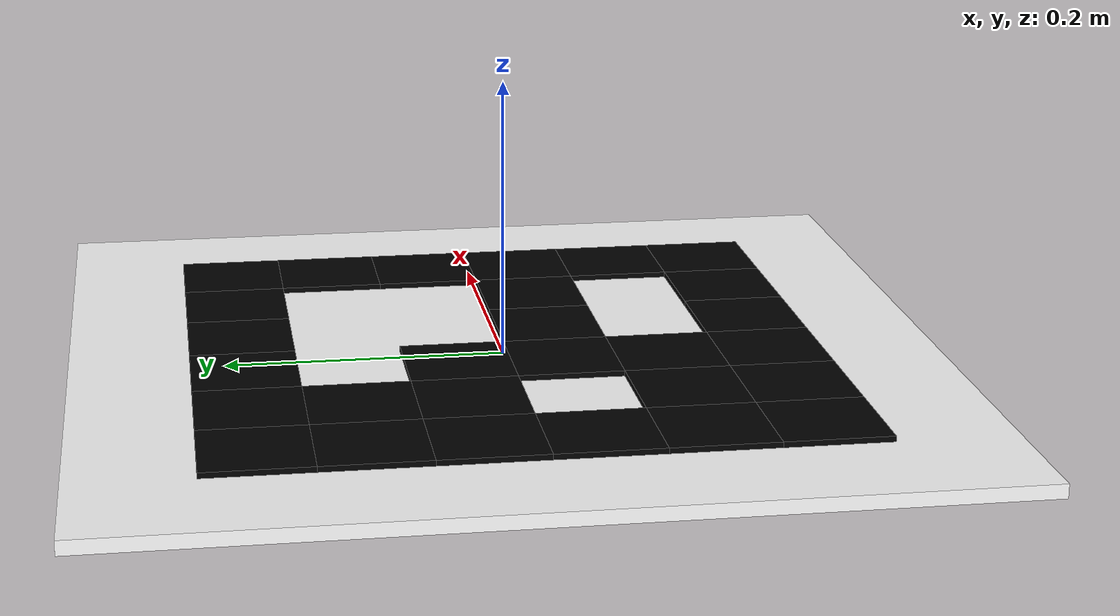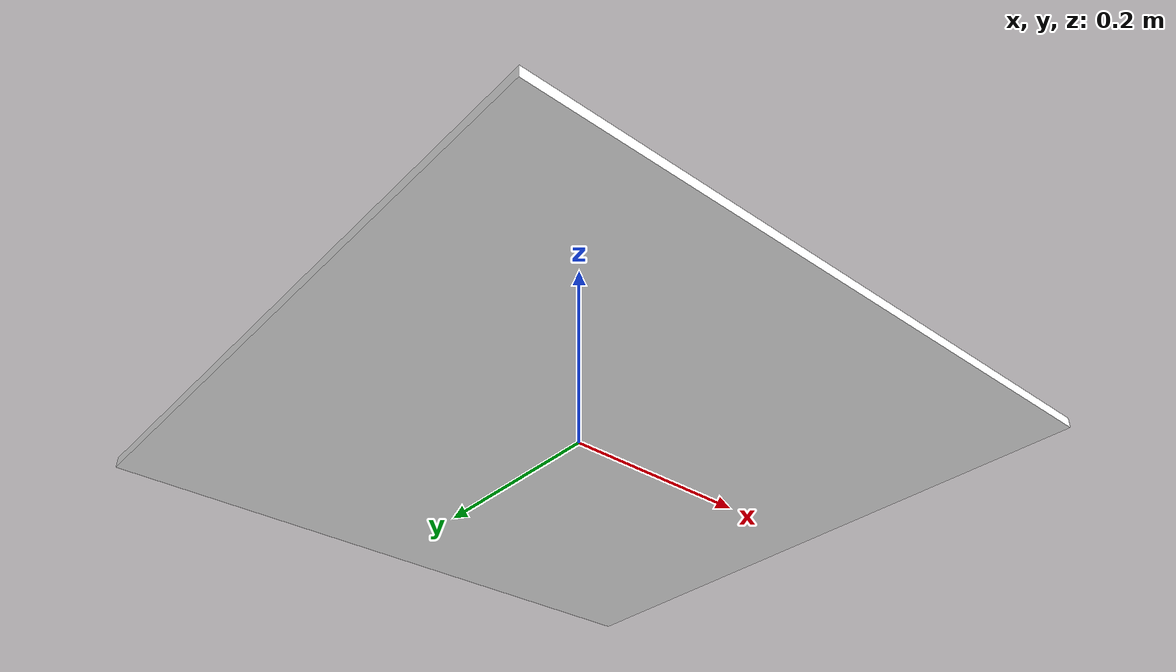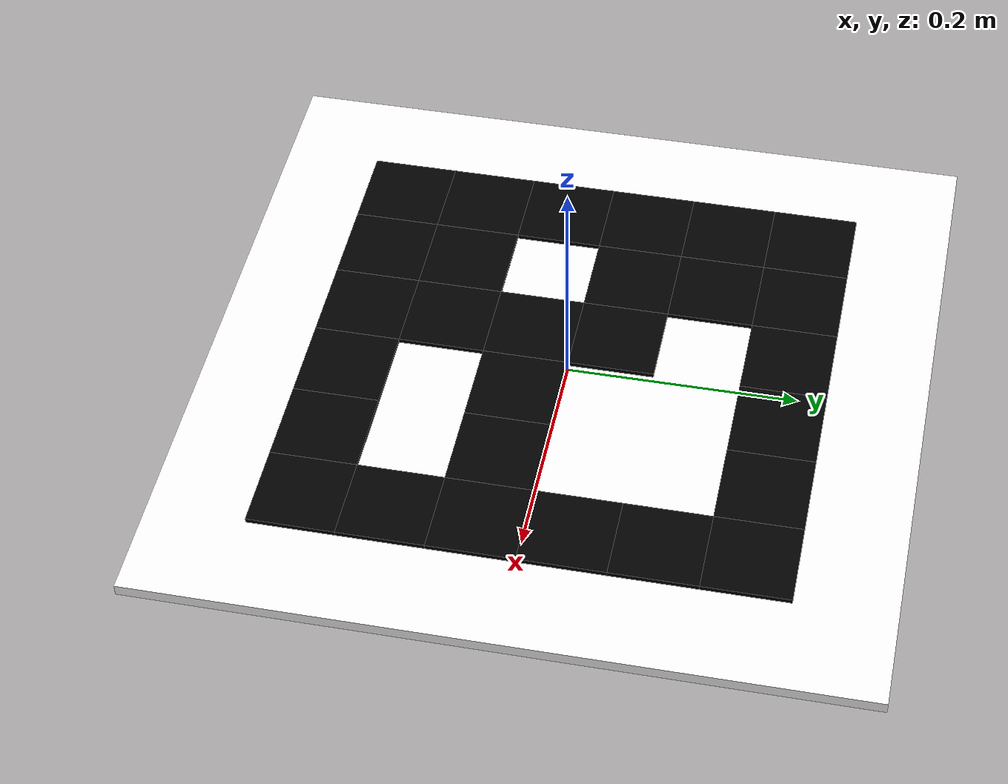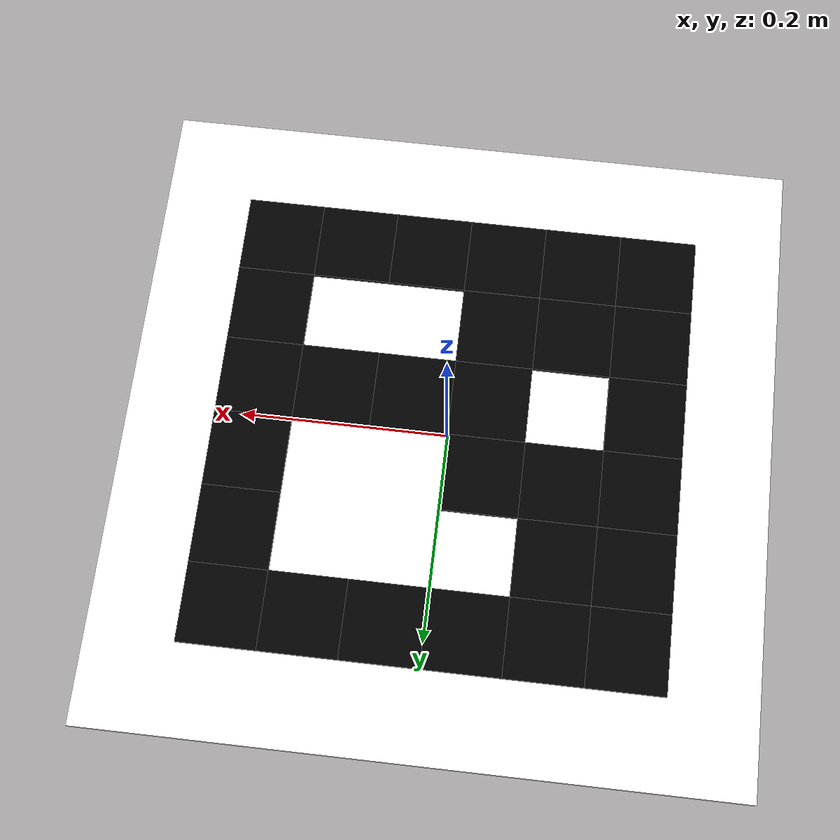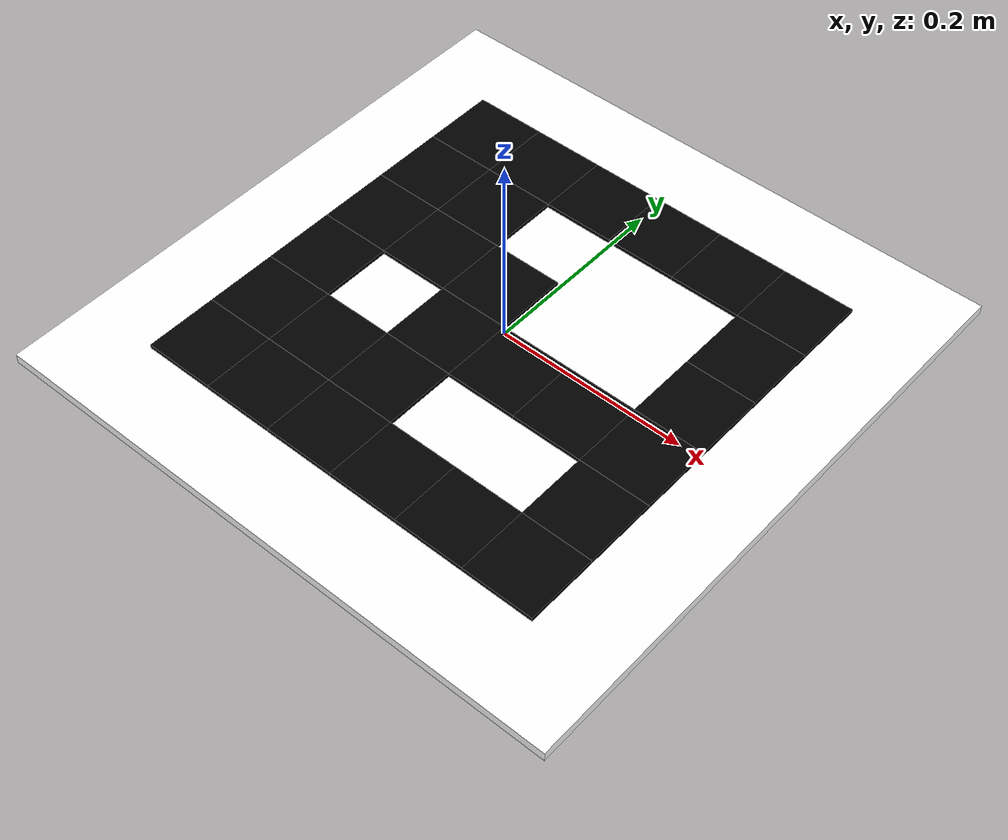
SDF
<?xml version="1.0"?>
<sdf version="1.9">
  <model name="aruco_marker">
    <static>true</static>
    <link name="board">
      <collision name="board_collision">
        <geometry><box><size>0.620 0.620 0.01</size></box></geometry>
      </collision>
      <visual name="white_board">
        <geometry><box><size>0.620 0.620 0.01</size></box></geometry>
        <material>
          <ambient>1 1 1 1</ambient>
          <diffuse>1 1 1 1</diffuse>
          <specular>0 0 0 1</specular>
        </material>
      </visual>
      <visual name="cell_00">
        <pose>0.187500 0.187500 0.007 0 0 0</pose>
        <geometry><box><size>0.075000 0.075000 0.004</size></box></geometry>
        <material>
          <ambient>0.005 0.005 0.005 1</ambient>
          <diffuse>0.005 0.005 0.005 1</diffuse>
          <specular>0 0 0 1</specular>
        </material>
      </visual>
      <visual name="cell_01">
        <pose>0.187500 0.112500 0.007 0 0 0</pose>
        <geometry><box><size>0.075000 0.075000 0.004</size></box></geometry>
        <material>
          <ambient>0.005 0.005 0.005 1</ambient>
          <diffuse>0.005 0.005 0.005 1</diffuse>
          <specular>0 0 0 1</specular>
        </material>
      </visual>
      <visual name="cell_02">
        <pose>0.187500 0.037500 0.007 0 0 0</pose>
        <geometry><box><size>0.075000 0.075000 0.004</size></box></geometry>
        <material>
          <ambient>0.005 0.005 0.005 1</ambient>
          <diffuse>0.005 0.005 0.005 1</diffuse>
          <specular>0 0 0 1</specular>
        </material>
      </visual>
      <visual name="cell_03">
        <pose>0.187500 -0.037500 0.007 0 0 0</pose>
        <geometry><box><size>0.075000 0.075000 0.004</size></box></geometry>
        <material>
          <ambient>0.005 0.005 0.005 1</ambient>
          <diffuse>0.005 0.005 0.005 1</diffuse>
          <specular>0 0 0 1</specular>
        </material>
      </visual>
      <visual name="cell_04">
        <pose>0.187500 -0.112500 0.007 0 0 0</pose>
        <geometry><box><size>0.075000 0.075000 0.004</size></box></geometry>
        <material>
          <ambient>0.005 0.005 0.005 1</ambient>
          <diffuse>0.005 0.005 0.005 1</diffuse>
          <specular>0 0 0 1</specular>
        </material>
      </visual>
      <visual name="cell_05">
        <pose>0.187500 -0.187500 0.007 0 0 0</pose>
        <geometry><box><size>0.075000 0.075000 0.004</size></box></geometry>
        <material>
          <ambient>0.005 0.005 0.005 1</ambient>
          <diffuse>0.005 0.005 0.005 1</diffuse>
          <specular>0 0 0 1</specular>
        </material>
      </visual>
      <visual name="cell_06">
        <pose>0.112500 0.187500 0.007 0 0 0</pose>
        <geometry><box><size>0.075000 0.075000 0.004</size></box></geometry>
        <material>
          <ambient>0.005 0.005 0.005 1</ambient>
          <diffuse>0.005 0.005 0.005 1</diffuse>
          <specular>0 0 0 1</specular>
        </material>
      </visual>
      <visual name="cell_07">
        <pose>0.112500 -0.037500 0.007 0 0 0</pose>
        <geometry><box><size>0.075000 0.075000 0.004</size></box></geometry>
        <material>
          <ambient>0.005 0.005 0.005 1</ambient>
          <diffuse>0.005 0.005 0.005 1</diffuse>
          <specular>0 0 0 1</specular>
        </material>
      </visual>
      <visual name="cell_08">
        <pose>0.112500 -0.187500 0.007 0 0 0</pose>
        <geometry><box><size>0.075000 0.075000 0.004</size></box></geometry>
        <material>
          <ambient>0.005 0.005 0.005 1</ambient>
          <diffuse>0.005 0.005 0.005 1</diffuse>
          <specular>0 0 0 1</specular>
        </material>
      </visual>
      <visual name="cell_09">
        <pose>0.037500 0.187500 0.007 0 0 0</pose>
        <geometry><box><size>0.075000 0.075000 0.004</size></box></geometry>
        <material>
          <ambient>0.005 0.005 0.005 1</ambient>
          <diffuse>0.005 0.005 0.005 1</diffuse>
          <specular>0 0 0 1</specular>
        </material>
      </visual>
      <visual name="cell_10">
        <pose>0.037500 -0.037500 0.007 0 0 0</pose>
        <geometry><box><size>0.075000 0.075000 0.004</size></box></geometry>
        <material>
          <ambient>0.005 0.005 0.005 1</ambient>
          <diffuse>0.005 0.005 0.005 1</diffuse>
          <specular>0 0 0 1</specular>
        </material>
      </visual>
      <visual name="cell_11">
        <pose>0.037500 -0.187500 0.007 0 0 0</pose>
        <geometry><box><size>0.075000 0.075000 0.004</size></box></geometry>
        <material>
          <ambient>0.005 0.005 0.005 1</ambient>
          <diffuse>0.005 0.005 0.005 1</diffuse>
          <specular>0 0 0 1</specular>
        </material>
      </visual>
      <visual name="cell_12">
        <pose>-0.037500 0.187500 0.007 0 0 0</pose>
        <geometry><box><size>0.075000 0.075000 0.004</size></box></geometry>
        <material>
          <ambient>0.005 0.005 0.005 1</ambient>
          <diffuse>0.005 0.005 0.005 1</diffuse>
          <specular>0 0 0 1</specular>
        </material>
      </visual>
      <visual name="cell_13">
        <pose>-0.037500 0.037500 0.007 0 0 0</pose>
        <geometry><box><size>0.075000 0.075000 0.004</size></box></geometry>
        <material>
          <ambient>0.005 0.005 0.005 1</ambient>
          <diffuse>0.005 0.005 0.005 1</diffuse>
          <specular>0 0 0 1</specular>
        </material>
      </visual>
      <visual name="cell_14">
        <pose>-0.037500 -0.037500 0.007 0 0 0</pose>
        <geometry><box><size>0.075000 0.075000 0.004</size></box></geometry>
        <material>
          <ambient>0.005 0.005 0.005 1</ambient>
          <diffuse>0.005 0.005 0.005 1</diffuse>
          <specular>0 0 0 1</specular>
        </material>
      </visual>
      <visual name="cell_15">
        <pose>-0.037500 -0.112500 0.007 0 0 0</pose>
        <geometry><box><size>0.075000 0.075000 0.004</size></box></geometry>
        <material>
          <ambient>0.005 0.005 0.005 1</ambient>
          <diffuse>0.005 0.005 0.005 1</diffuse>
          <specular>0 0 0 1</specular>
        </material>
      </visual>
      <visual name="cell_16">
        <pose>-0.037500 -0.187500 0.007 0 0 0</pose>
        <geometry><box><size>0.075000 0.075000 0.004</size></box></geometry>
        <material>
          <ambient>0.005 0.005 0.005 1</ambient>
          <diffuse>0.005 0.005 0.005 1</diffuse>
          <specular>0 0 0 1</specular>
        </material>
      </visual>
      <visual name="cell_17">
        <pose>-0.112500 0.187500 0.007 0 0 0</pose>
        <geometry><box><size>0.075000 0.075000 0.004</size></box></geometry>
        <material>
          <ambient>0.005 0.005 0.005 1</ambient>
          <diffuse>0.005 0.005 0.005 1</diffuse>
          <specular>0 0 0 1</specular>
        </material>
      </visual>
      <visual name="cell_18">
        <pose>-0.112500 0.112500 0.007 0 0 0</pose>
        <geometry><box><size>0.075000 0.075000 0.004</size></box></geometry>
        <material>
          <ambient>0.005 0.005 0.005 1</ambient>
          <diffuse>0.005 0.005 0.005 1</diffuse>
          <specular>0 0 0 1</specular>
        </material>
      </visual>
      <visual name="cell_19">
        <pose>-0.112500 0.037500 0.007 0 0 0</pose>
        <geometry><box><size>0.075000 0.075000 0.004</size></box></geometry>
        <material>
          <ambient>0.005 0.005 0.005 1</ambient>
          <diffuse>0.005 0.005 0.005 1</diffuse>
          <specular>0 0 0 1</specular>
        </material>
      </visual>
      <visual name="cell_20">
        <pose>-0.112500 -0.112500 0.007 0 0 0</pose>
        <geometry><box><size>0.075000 0.075000 0.004</size></box></geometry>
        <material>
          <ambient>0.005 0.005 0.005 1</ambient>
          <diffuse>0.005 0.005 0.005 1</diffuse>
          <specular>0 0 0 1</specular>
        </material>
      </visual>
      <visual name="cell_21">
        <pose>-0.112500 -0.187500 0.007 0 0 0</pose>
        <geometry><box><size>0.075000 0.075000 0.004</size></box></geometry>
        <material>
          <ambient>0.005 0.005 0.005 1</ambient>
          <diffuse>0.005 0.005 0.005 1</diffuse>
          <specular>0 0 0 1</specular>
        </material>
      </visual>
      <visual name="cell_22">
        <pose>-0.187500 0.187500 0.007 0 0 0</pose>
        <geometry><box><size>0.075000 0.075000 0.004</size></box></geometry>
        <material>
          <ambient>0.005 0.005 0.005 1</ambient>
          <diffuse>0.005 0.005 0.005 1</diffuse>
          <specular>0 0 0 1</specular>
        </material>
      </visual>
      <visual name="cell_23">
        <pose>-0.187500 0.112500 0.007 0 0 0</pose>
        <geometry><box><size>0.075000 0.075000 0.004</size></box></geometry>
        <material>
          <ambient>0.005 0.005 0.005 1</ambient>
          <diffuse>0.005 0.005 0.005 1</diffuse>
          <specular>0 0 0 1</specular>
        </material>
      </visual>
      <visual name="cell_24">
        <pose>-0.187500 0.037500 0.007 0 0 0</pose>
        <geometry><box><size>0.075000 0.075000 0.004</size></box></geometry>
        <material>
          <ambient>0.005 0.005 0.005 1</ambient>
          <diffuse>0.005 0.005 0.005 1</diffuse>
          <specular>0 0 0 1</specular>
        </material>
      </visual>
      <visual name="cell_25">
        <pose>-0.187500 -0.037500 0.007 0 0 0</pose>
        <geometry><box><size>0.075000 0.075000 0.004</size></box></geometry>
        <material>
          <ambient>0.005 0.005 0.005 1</ambient>
          <diffuse>0.005 0.005 0.005 1</diffuse>
          <specular>0 0 0 1</specular>
        </material>
      </visual>
      <visual name="cell_26">
        <pose>-0.187500 -0.112500 0.007 0 0 0</pose>
        <geometry><box><size>0.075000 0.075000 0.004</size></box></geometry>
        <material>
          <ambient>0.005 0.005 0.005 1</ambient>
          <diffuse>0.005 0.005 0.005 1</diffuse>
          <specular>0 0 0 1</specular>
        </material>
      </visual>
      <visual name="cell_27">
        <pose>-0.187500 -0.187500 0.007 0 0 0</pose>
        <geometry><box><size>0.075000 0.075000 0.004</size></box></geometry>
        <material>
          <ambient>0.005 0.005 0.005 1</ambient>
          <diffuse>0.005 0.005 0.005 1</diffuse>
          <specular>0 0 0 1</specular>
        </material>
      </visual>
    </link>
  </model>
</sdf>
